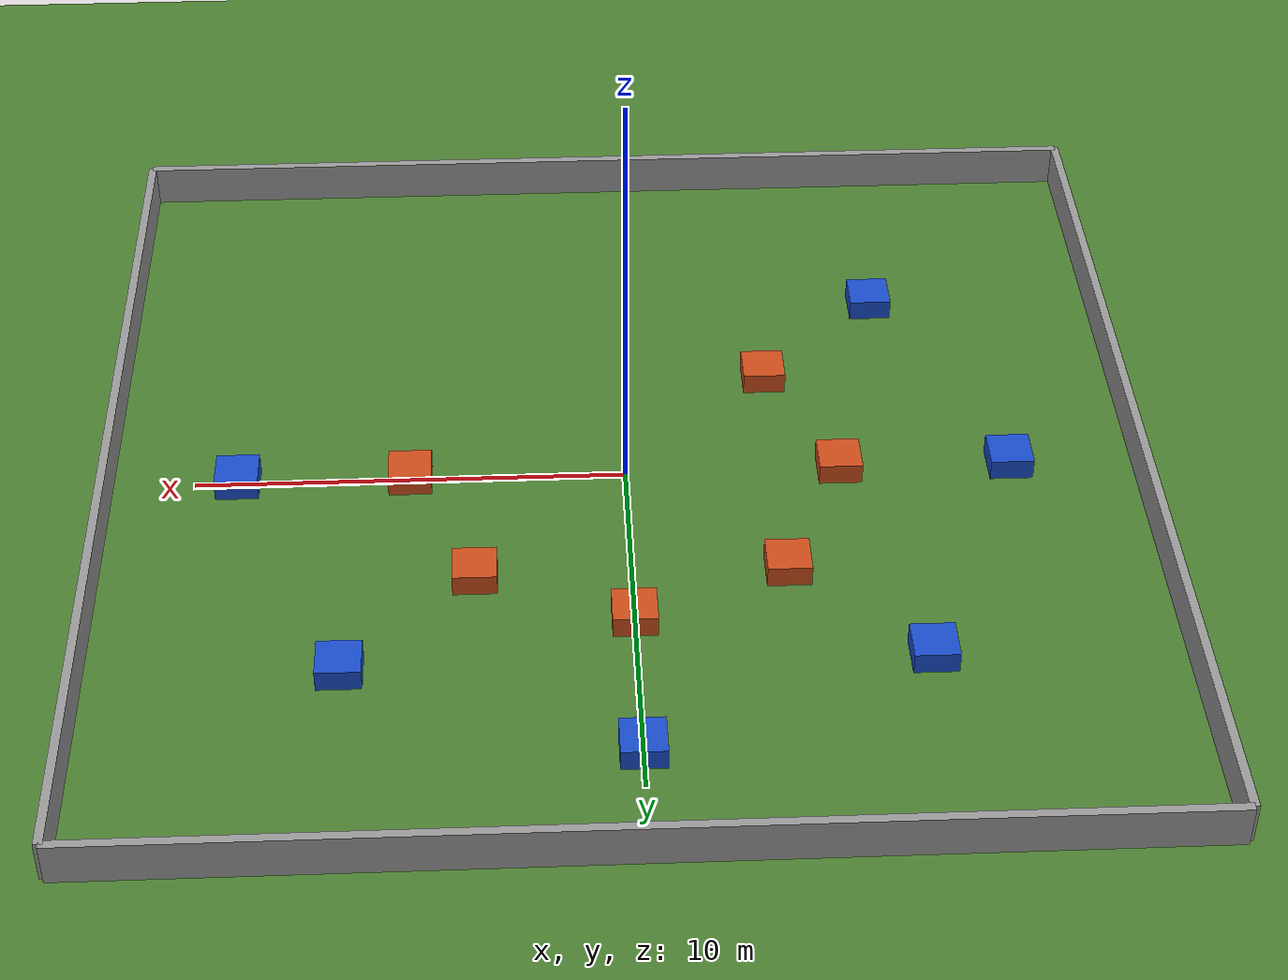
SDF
<?xml version="1.0" ?>
<sdf version="1.9">
  <world name="open_field">

    <!-- Physics -->
    <physics name="default_physics" default="true" type="ode">
      <max_step_size>0.001</max_step_size>
      <real_time_factor>1</real_time_factor>
    </physics>

    <!-- Scene -->
    <scene>
      <ambient>0.4 0.4 0.4 1</ambient>
      <background>0.7 0.85 1.0 1</background>
      <shadows>true</shadows>
    </scene>

    <!-- Sun -->
    <light name="sun" type="directional">
      <cast_shadows>true</cast_shadows>
      <pose>0 0 10 0 0 0</pose>
      <diffuse>1.0 0.95 0.85 1</diffuse>
      <specular>0.2 0.2 0.2 1</specular>
      <direction>-0.5 0.1 -0.9</direction>
    </light>

    <!-- Ground plane -->
    <model name="ground_plane">
      <static>true</static>
      <link name="link">
        <collision name="collision">
          <geometry><plane><normal>0 0 1</normal><size>50 50</size></plane></geometry>
          <surface><friction><ode><mu>0.8</mu><mu2>0.8</mu2></ode></friction></surface>
        </collision>
        <visual name="visual">
          <geometry><plane><normal>0 0 1</normal><size>50 50</size></plane></geometry>
          <material>
            <ambient>0.3 0.5 0.2 1</ambient>
            <diffuse>0.3 0.5 0.2 1</diffuse>
          </material>
        </visual>
      </link>
    </model>

    <!-- Perimeter walls (24×24 m arena) -->
    <model name="wall_north">
      <static>true</static>
      <pose>0 12 0.5 0 0 0</pose>
      <link name="link">
        <collision name="col"><geometry><box><size>24 0.2 1.0</size></box></geometry></collision>
        <visual name="vis"><geometry><box><size>24 0.2 1.0</size></box></geometry>
          <material><ambient>0.6 0.6 0.6 1</ambient><diffuse>0.6 0.6 0.6 1</diffuse></material>
        </visual>
      </link>
    </model>
    <model name="wall_south">
      <static>true</static>
      <pose>0 -12 0.5 0 0 0</pose>
      <link name="link">
        <collision name="col"><geometry><box><size>24 0.2 1.0</size></box></geometry></collision>
        <visual name="vis"><geometry><box><size>24 0.2 1.0</size></box></geometry>
          <material><ambient>0.6 0.6 0.6 1</ambient><diffuse>0.6 0.6 0.6 1</diffuse></material>
        </visual>
      </link>
    </model>
    <model name="wall_east">
      <static>true</static>
      <pose>12 0 0.5 0 0 0</pose>
      <link name="link">
        <collision name="col"><geometry><box><size>0.2 24 1.0</size></box></geometry></collision>
        <visual name="vis"><geometry><box><size>0.2 24 1.0</size></box></geometry>
          <material><ambient>0.6 0.6 0.6 1</ambient><diffuse>0.6 0.6 0.6 1</diffuse></material>
        </visual>
      </link>
    </model>
    <model name="wall_west">
      <static>true</static>
      <pose>-12 0 0.5 0 0 0</pose>
      <link name="link">
        <collision name="col"><geometry><box><size>0.2 24 1.0</size></box></geometry></collision>
        <visual name="vis"><geometry><box><size>0.2 24 1.0</size></box></geometry>
          <material><ambient>0.6 0.6 0.6 1</ambient><diffuse>0.6 0.6 0.6 1</diffuse></material>
        </visual>
      </link>
    </model>

    <!-- Inner ring obstacles (r ≈ 5 m) -->
    <model name="obs_i1"><static>true</static><pose>5 0 0.25 0 0 0</pose>
      <link name="link"><collision name="col"><geometry><box><size>1 1 0.5</size></box></geometry></collision>
      <visual name="vis"><geometry><box><size>1 1 0.5</size></box></geometry>
        <material><ambient>0.8 0.3 0.1 1</ambient><diffuse>0.8 0.3 0.1 1</diffuse></material></visual></link></model>
    <model name="obs_i2"><static>true</static><pose>3.5 3.5 0.25 0 0 0</pose>
      <link name="link"><collision name="col"><geometry><box><size>1 1 0.5</size></box></geometry></collision>
      <visual name="vis"><geometry><box><size>1 1 0.5</size></box></geometry>
        <material><ambient>0.8 0.3 0.1 1</ambient><diffuse>0.8 0.3 0.1 1</diffuse></material></visual></link></model>
    <model name="obs_i3"><static>true</static><pose>0 5 0.25 0 0 0</pose>
      <link name="link"><collision name="col"><geometry><box><size>1 1 0.5</size></box></geometry></collision>
      <visual name="vis"><geometry><box><size>1 1 0.5</size></box></geometry>
        <material><ambient>0.8 0.3 0.1 1</ambient><diffuse>0.8 0.3 0.1 1</diffuse></material></visual></link></model>
    <model name="obs_i4"><static>true</static><pose>-3.5 3.5 0.25 0 0 0</pose>
      <link name="link"><collision name="col"><geometry><box><size>1 1 0.5</size></box></geometry></collision>
      <visual name="vis"><geometry><box><size>1 1 0.5</size></box></geometry>
        <material><ambient>0.8 0.3 0.1 1</ambient><diffuse>0.8 0.3 0.1 1</diffuse></material></visual></link></model>
    <model name="obs_i5"><static>true</static><pose>-5 0 0.25 0 0 0</pose>
      <link name="link"><collision name="col"><geometry><box><size>1 1 0.5</size></box></geometry></collision>
      <visual name="vis"><geometry><box><size>1 1 0.5</size></box></geometry>
        <material><ambient>0.8 0.3 0.1 1</ambient><diffuse>0.8 0.3 0.1 1</diffuse></material></visual></link></model>
    <model name="obs_i6"><static>true</static><pose>-3.5 -3.5 0.25 0 0 0</pose>
      <link name="link"><collision name="col"><geometry><box><size>1 1 0.5</size></box></geometry></collision>
      <visual name="vis"><geometry><box><size>1 1 0.5</size></box></geometry>
        <material><ambient>0.8 0.3 0.1 1</ambient><diffuse>0.8 0.3 0.1 1</diffuse></material></visual></link></model>

    <!-- Outer ring obstacles (r ≈ 9 m) -->
    <model name="obs_o1"><static>true</static><pose>9 0 0.25 0 0 0</pose>
      <link name="link"><collision name="col"><geometry><box><size>1 1 0.5</size></box></geometry></collision>
      <visual name="vis"><geometry><box><size>1 1 0.5</size></box></geometry>
        <material><ambient>0.1 0.3 0.8 1</ambient><diffuse>0.1 0.3 0.8 1</diffuse></material></visual></link></model>
    <model name="obs_o2"><static>true</static><pose>6.4 6.4 0.25 0 0 0</pose>
      <link name="link"><collision name="col"><geometry><box><size>1 1 0.5</size></box></geometry></collision>
      <visual name="vis"><geometry><box><size>1 1 0.5</size></box></geometry>
        <material><ambient>0.1 0.3 0.8 1</ambient><diffuse>0.1 0.3 0.8 1</diffuse></material></visual></link></model>
    <model name="obs_o3"><static>true</static><pose>0 9 0.25 0 0 0</pose>
      <link name="link"><collision name="col"><geometry><box><size>1 1 0.5</size></box></geometry></collision>
      <visual name="vis"><geometry><box><size>1 1 0.5</size></box></geometry>
        <material><ambient>0.1 0.3 0.8 1</ambient><diffuse>0.1 0.3 0.8 1</diffuse></material></visual></link></model>
    <model name="obs_o4"><static>true</static><pose>-6.4 6.4 0.25 0 0 0</pose>
      <link name="link"><collision name="col"><geometry><box><size>1 1 0.5</size></box></geometry></collision>
      <visual name="vis"><geometry><box><size>1 1 0.5</size></box></geometry>
        <material><ambient>0.1 0.3 0.8 1</ambient><diffuse>0.1 0.3 0.8 1</diffuse></material></visual></link></model>
    <model name="obs_o5"><static>true</static><pose>-9 0 0.25 0 0 0</pose>
      <link name="link"><collision name="col"><geometry><box><size>1 1 0.5</size></box></geometry></collision>
      <visual name="vis"><geometry><box><size>1 1 0.5</size></box></geometry>
        <material><ambient>0.1 0.3 0.8 1</ambient><diffuse>0.1 0.3 0.8 1</diffuse></material></visual></link></model>
    <model name="obs_o6"><static>true</static><pose>-6.4 -6.4 0.25 0 0 0</pose>
      <link name="link"><collision name="col"><geometry><box><size>1 1 0.5</size></box></geometry></collision>
      <visual name="vis"><geometry><box><size>1 1 0.5</size></box></geometry>
        <material><ambient>0.1 0.3 0.8 1</ambient><diffuse>0.1 0.3 0.8 1</diffuse></material></visual></link></model>

  </world>
</sdf>
